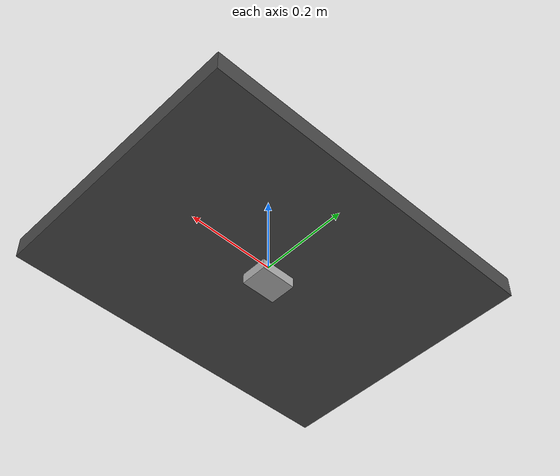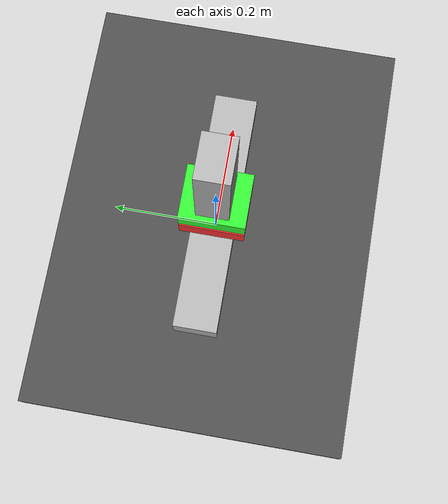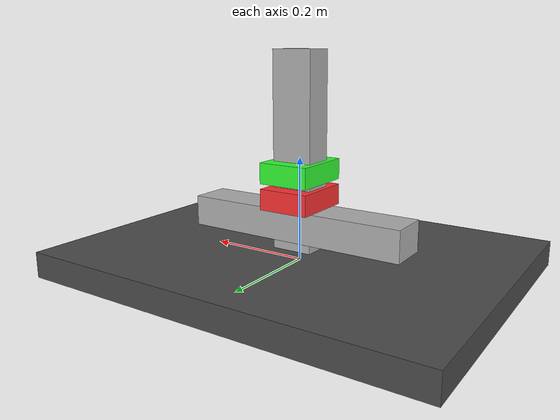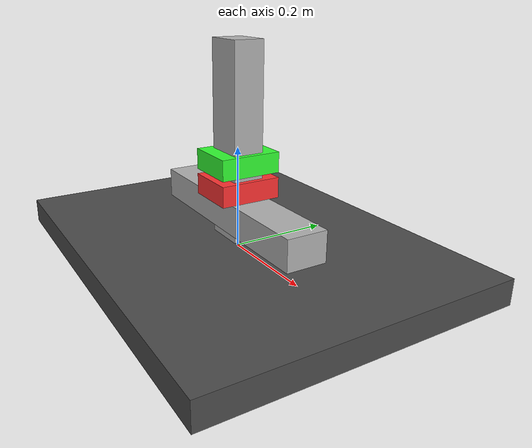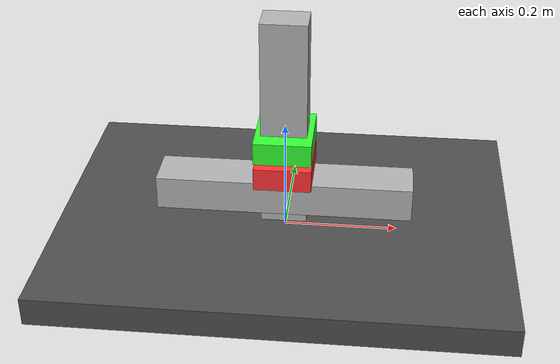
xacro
<?xml version="1.0"?>
<robot xmlns:xacro="http://www.ros.org/wiki/xacro" name="dual_lts300_system">

  <!-- Include modules -->
  <xacro:include filename="$(find promoc_bringup)/urdf/modules/lts300_x_axis.urdf.xacro"/>
  <xacro:include filename="$(find promoc_bringup)/urdf/modules/lts300_z_axis.urdf.xacro"/>
  <xacro:include filename="$(find promoc_bringup)/urdf/properties/materials.xacro"/>

  <!-- Base platform -->
  <link name="base_link">
    <visual>
      <geometry>
        <box size="0.8 0.6 0.05"/>
      </geometry>
      <material name="base_platform"/>
    </visual>
    <collision>
      <geometry>
        <box size="0.8 0.6 0.05"/>
      </geometry>
    </collision>
    <inertial>
      <mass value="5.0"/>
      <origin xyz="0 0 0"/>
      <inertia ixx="0.15" ixy="0.0" ixz="0.0" iyy="0.27" iyz="0.0" izz="0.41"/>
    </inertial>
  </link>

  <!-- X-Axis LTS300 (horizontal, on base) -->
  <xacro:lts300_x_axis prefix="lts300"
                       parent_link="base_link"
                       mount_x="0" mount_y="0" mount_z="0.075"
                       mount_roll="0" mount_pitch="0" mount_yaw="0"
                       enable_ros2_control="true"/>

  <!-- Z-Axis LTS300 (vertical, on X carriage) -->
  <xacro:lts300_z_axis prefix="lts300"
                       parent_link="lts300_x_carriage"
                       mount_x="0" mount_y="0" mount_z="0.05"
                       mount_roll="0" mount_pitch="0" mount_yaw="0"
                       enable_ros2_control="true"/>

  <!-- Gazebo Plugin -->
  <gazebo>
    <plugin filename="gz_ros2_control-system" name="gz_ros2_control::GazeboSimROS2ControlPlugin">
      <parameters>$(find promoc_bringup)/config/dual_lts300_controllers.yaml</parameters>
    </plugin>
  </gazebo>

</robot>

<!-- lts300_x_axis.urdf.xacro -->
<robot xmlns:xacro="http://www.ros.org/wiki/xacro">

  <!-- Include dependencies -->
  <xacro:include filename="$(find promoc_bringup)/urdf/properties/lts300_properties.xacro"/>
  <xacro:include filename="$(find promoc_bringup)/urdf/properties/materials.xacro"/>

  <!-- LTS300 X-Axis Macro -->
  <xacro:macro name="lts300_x_axis" params="prefix parent_link
                                            mount_x:=0 mount_y:=0 mount_z:=0
                                            mount_roll:=0 mount_pitch:=0 mount_yaw:=0
                                            enable_ros2_control:=true">

    <!-- X-Axis Housing (stationary) -->
    <link name="${prefix}_x_housing">
      <visual>
        <geometry>
          <box size="${lts300_housing_length} ${lts300_housing_width} ${lts300_housing_height}"/>
        </geometry>
        <material name="lts300_housing"/>
      </visual>
      <collision>
        <geometry>
          <box size="${lts300_housing_length} ${lts300_housing_width} ${lts300_housing_height}"/>
        </geometry>
      </collision>
      <inertial>
        <mass value="${lts300_housing_mass}"/>
        <origin xyz="0 0 0"/>
        <inertia ixx="${(lts300_housing_mass/12) * (lts300_housing_width*lts300_housing_width + lts300_housing_height*lts300_housing_height)}"
                 ixy="0.0" ixz="0.0"
                 iyy="${(lts300_housing_mass/12) * (lts300_housing_length*lts300_housing_length + lts300_housing_height*lts300_housing_height)}"
                 iyz="0.0"
                 izz="${(lts300_housing_mass/12) * (lts300_housing_length*lts300_housing_length + lts300_housing_width*lts300_housing_width)}"/>
      </inertial>
    </link>

    <!-- X-Axis Carriage (moving) -->
    <link name="${prefix}_x_carriage">
      <visual>
        <geometry>
          <box size="${lts300_carriage_length} ${lts300_carriage_width} ${lts300_carriage_height}"/>
        </geometry>
        <material name="x_axis_color"/>
      </visual>
      <collision>
        <geometry>
          <box size="${lts300_carriage_length} ${lts300_carriage_width} ${lts300_carriage_height}"/>
        </geometry>
      </collision>
      <inertial>
        <mass value="${lts300_carriage_mass}"/>
        <origin xyz="0 0 0"/>
        <inertia ixx="${(lts300_carriage_mass/12) * (lts300_carriage_width*lts300_carriage_width + lts300_carriage_height*lts300_carriage_height)}"
                 ixy="0.0" ixz="0.0"
                 iyy="${(lts300_carriage_mass/12) * (lts300_carriage_length*lts300_carriage_length + lts300_carriage_height*lts300_carriage_height)}"
                 iyz="0.0"
                 izz="${(lts300_carriage_mass/12) * (lts300_carriage_length*lts300_carriage_length + lts300_carriage_width*lts300_carriage_width)}"/>
      </inertial>
    </link>

    <!-- Mount housing to parent -->
    <joint name="${prefix}_x_housing_mount" type="fixed">
      <parent link="${parent_link}"/>
      <child link="${prefix}_x_housing"/>
      <origin xyz="${mount_x} ${mount_y} ${mount_z}"
              rpy="${mount_roll} ${mount_pitch} ${mount_yaw}"/>
    </joint>

    <!-- X-Axis Prismatic Joint -->
    <joint name="${prefix}_x_joint" type="prismatic">
      <parent link="${prefix}_x_housing"/>
      <child link="${prefix}_x_carriage"/>
      <origin xyz="0 0 ${lts300_housing_height/2 + lts300_carriage_height/2}" rpy="0 0 0"/>
      <axis xyz="1 0 0"/>  <!-- X-direction -->
      <limit lower="${-lts300_safe_travel/2}"
             upper="${lts300_safe_travel/2}"
             effort="${lts300_max_effort}"
             velocity="${lts300_safe_velocity}"/>
      <dynamics damping="0.2" friction="0.1"/>
    </joint>

    <!-- ros2_control interface (conditional) -->
    <xacro:if value="${enable_ros2_control}">
      <ros2_control name="${prefix}_x_lts300_system" type="system">
        <hardware>
          <plugin>gz_ros2_control/GazeboSystem</plugin>
        </hardware>
        <joint name="${prefix}_x_joint">
          <command_interface name="position">
            <param name="min">${-lts300_safe_travel/2}</param>
            <param name="max">${lts300_safe_travel/2}</param>
          </command_interface>
          <state_interface name="position"/>
          <state_interface name="velocity"/>
          <state_interface name="effort"/>
        </joint>
      </ros2_control>
    </xacro:if>

  </xacro:macro>

</robot>

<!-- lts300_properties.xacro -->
<robot xmlns:xacro="http://www.ros.org/wiki/xacro">

  <!-- LTS300 Physical Properties -->
  <xacro:property name="lts300_travel_range" value="0.300" />       <!-- 300mm travel -->
  <xacro:property name="lts300_max_velocity" value="0.050" />       <!-- 50mm/s max -->
  <xacro:property name="lts300_resolution" value="0.0000005" />     <!-- 0.5µm resolution -->
  <xacro:property name="lts300_repeatability" value="0.000002" />   <!-- ±2µm repeatability -->

  <!-- LTS300 Dimensions -->
  <xacro:property name="lts300_housing_length" value="0.450" />     <!-- 450mm housing -->
  <xacro:property name="lts300_housing_width" value="0.080" />      <!-- 80mm width -->
  <xacro:property name="lts300_housing_height" value="0.060" />     <!-- 60mm height -->

  <xacro:property name="lts300_carriage_length" value="0.100" />    <!-- 100mm carriage -->
  <xacro:property name="lts300_carriage_width" value="0.120" />     <!-- 120mm carriage -->
  <xacro:property name="lts300_carriage_height" value="0.040" />    <!-- 40mm carriage -->

  <!-- LTS300 Mass Properties -->
  <xacro:property name="lts300_housing_mass" value="1.2" />         <!-- 1.2kg housing -->
  <xacro:property name="lts300_carriage_mass" value="0.3" />        <!-- 0.3kg carriage -->

  <!-- Safety Limits (conservative) -->
  <xacro:property name="lts300_safe_travel" value="0.280" />        <!-- 280mm safe travel -->
  <xacro:property name="lts300_safe_velocity" value="0.040" />      <!-- 40mm/s safe velocity -->
  <xacro:property name="lts300_max_effort" value="100" />           <!-- 100N max force -->

</robot>

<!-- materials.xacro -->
<robot xmlns:xacro="http://www.ros.org/wiki/xacro">

  <!-- Thorlabs LTS300 Materials -->
  <material name="lts300_housing">
    <color rgba="0.7 0.7 0.7 1.0"/>  <!-- Aluminum gray -->
  </material>

  <material name="lts300_carriage">
    <color rgba="0.2 0.4 0.8 1.0"/>  <!-- Blue carriage -->
  </material>

  <!-- Base Platform Materials -->
  <material name="base_platform">
    <color rgba="0.3 0.3 0.3 1.0"/>  <!-- Dark gray -->
  </material>

  <!-- Axis Identification Colors -->
  <material name="x_axis_color">
    <color rgba="1.0 0.2 0.2 1.0"/>  <!-- Red for X -->
  </material>

  <material name="z_axis_color">
    <color rgba="0.2 1.0 0.2 1.0"/>  <!-- Green for Z -->
  </material>

  <!-- Future Planar Motor Materials -->
  <material name="planar_motor_base">
    <color rgba="0.1 0.1 0.1 1.0"/>  <!-- Black base -->
  </material>

  <material name="planar_motor_mover">
    <color rgba="0.8 0.6 0.2 1.0"/>  <!-- Gold mover -->
  </material>

</robot>

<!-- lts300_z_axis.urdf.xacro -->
<robot xmlns:xacro="http://www.ros.org/wiki/xacro">

  <!-- Include dependencies -->
  <xacro:include filename="$(find promoc_bringup)/urdf/properties/lts300_properties.xacro"/>
  <xacro:include filename="$(find promoc_bringup)/urdf/properties/materials.xacro"/>

  <!-- LTS300 Z-Axis Macro (vertical mounting) -->
  <xacro:macro name="lts300_z_axis" params="prefix parent_link
                                            mount_x:=0 mount_y:=0 mount_z:=0
                                            mount_roll:=0 mount_pitch:=0 mount_yaw:=0
                                            enable_ros2_control:=true">

    <!-- Z-Axis Housing (stationary, mounted vertically) -->
    <link name="${prefix}_z_housing">
      <visual>
        <geometry>
          <!-- Rotated for vertical mounting -->
          <box size="${lts300_housing_width} ${lts300_housing_height} ${lts300_housing_length}"/>
        </geometry>
        <material name="lts300_housing"/>
      </visual>
      <collision>
        <geometry>
          <box size="${lts300_housing_width} ${lts300_housing_height} ${lts300_housing_length}"/>
        </geometry>
      </collision>
      <inertial>
        <mass value="${lts300_housing_mass}"/>
        <origin xyz="0 0 0"/>
        <!-- Inertia adjusted for vertical orientation -->
        <inertia ixx="${(lts300_housing_mass/12) * (lts300_housing_height*lts300_housing_height + lts300_housing_length*lts300_housing_length)}"
                 ixy="0.0" ixz="0.0"
                 iyy="${(lts300_housing_mass/12) * (lts300_housing_width*lts300_housing_width + lts300_housing_length*lts300_housing_length)}"
                 iyz="0.0"
                 izz="${(lts300_housing_mass/12) * (lts300_housing_width*lts300_housing_width + lts300_housing_height*lts300_housing_height)}"/>
      </inertial>
    </link>

    <!-- Z-Axis Carriage (moving vertically) -->
    <link name="${prefix}_z_carriage">
      <visual>
        <geometry>
          <box size="${lts300_carriage_length} ${lts300_carriage_width} ${lts300_carriage_height}"/>
        </geometry>
        <material name="z_axis_color"/>
      </visual>
      <collision>
        <geometry>
          <box size="${lts300_carriage_length} ${lts300_carriage_width} ${lts300_carriage_height}"/>
        </geometry>
      </collision>
      <inertial>
        <mass value="${lts300_carriage_mass}"/>
        <origin xyz="0 0 0"/>
        <inertia ixx="${(lts300_carriage_mass/12) * (lts300_carriage_width*lts300_carriage_width + lts300_carriage_height*lts300_carriage_height)}"
                 ixy="0.0" ixz="0.0"
                 iyy="${(lts300_carriage_mass/12) * (lts300_carriage_length*lts300_carriage_length + lts300_carriage_height*lts300_carriage_height)}"
                 iyz="0.0"
                 izz="${(lts300_carriage_mass/12) * (lts300_carriage_length*lts300_carriage_length + lts300_carriage_width*lts300_carriage_width)}"/>
      </inertial>
    </link>

    <!-- Mount housing to parent -->
    <joint name="${prefix}_z_housing_mount" type="fixed">
      <parent link="${parent_link}"/>
      <child link="${prefix}_z_housing"/>
      <origin xyz="${mount_x} ${mount_y} ${mount_z}"
              rpy="${mount_roll} ${mount_pitch} ${mount_yaw}"/>
    </joint>

    <!-- Z-Axis Prismatic Joint -->
    <joint name="${prefix}_z_joint" type="prismatic">
      <parent link="${prefix}_z_housing"/>
      <child link="${prefix}_z_carriage"/>
      <origin xyz="0 0 0" rpy="0 0 0"/>
      <axis xyz="0 0 1"/>  <!-- Z-direction -->
      <limit lower="${-lts300_safe_travel/2}"
             upper="${lts300_safe_travel/2}"
             effort="${lts300_max_effort}"
             velocity="${lts300_safe_velocity}"/>
      <dynamics damping="0.2" friction="0.1"/>
    </joint>

    <!-- ros2_control interface (conditional) -->
    <xacro:if value="${enable_ros2_control}">
      <ros2_control name="${prefix}_z_lts300_system" type="system">
        <hardware>
          <plugin>gz_ros2_control/GazeboSystem</plugin>
        </hardware>
        <joint name="${prefix}_z_joint">
          <command_interface name="position">
            <param name="min">${-lts300_safe_travel/2}</param>
            <param name="max">${lts300_safe_travel/2}</param>
          </command_interface>
          <state_interface name="position"/>
          <state_interface name="velocity"/>
          <state_interface name="effort"/>
        </joint>
      </ros2_control>
    </xacro:if>

  </xacro:macro>

</robot>
